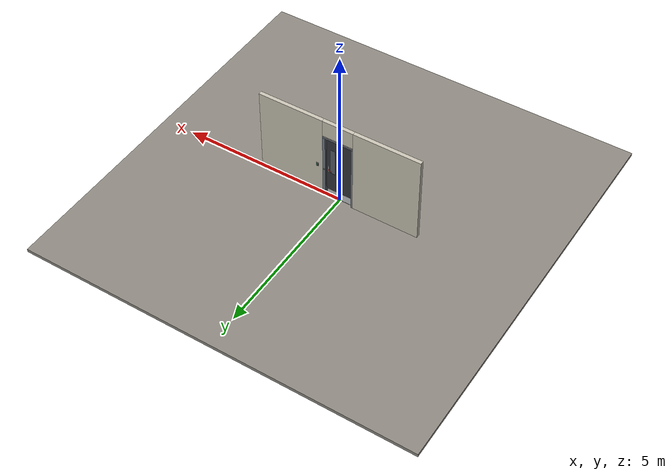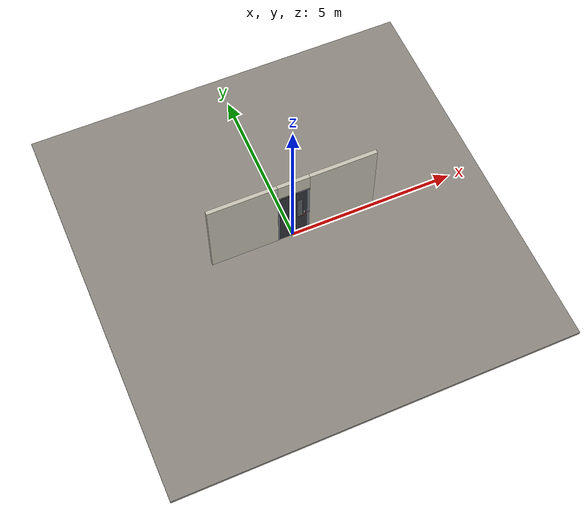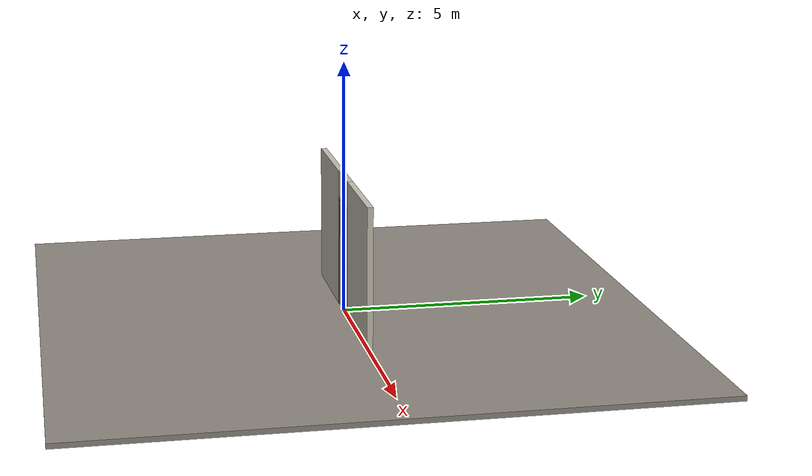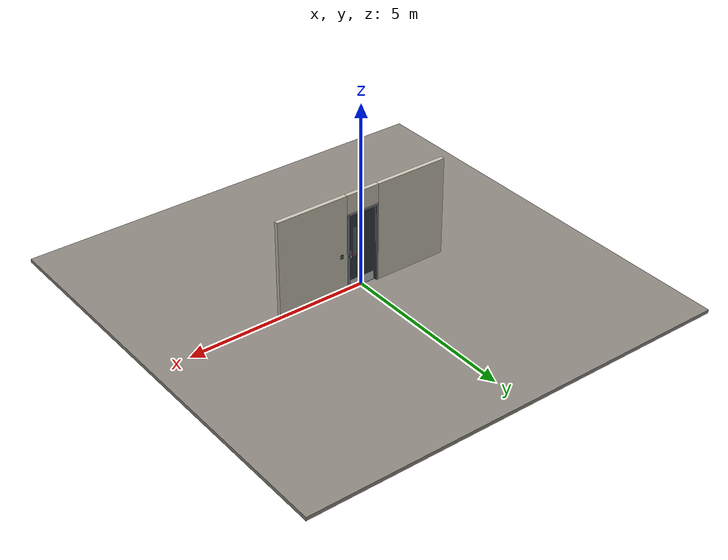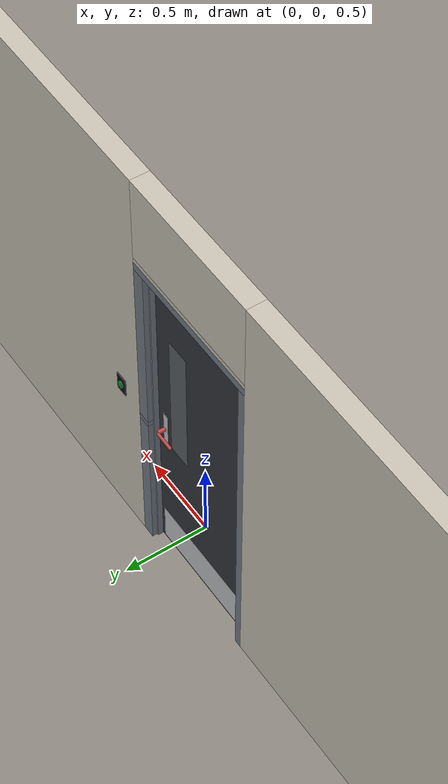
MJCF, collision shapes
<?xml version="1.0" ?>
<mujoco model="db0036_swing_single_full">
  <compiler angle="radian" meshdir="../../hardware" texturedir="../../textures" autolimits="true" inertiafromgeom="false"/>
  <option timestep="0.002" integrator="implicitfast" cone="elliptic" impratio="10" noslip_iterations="3">
    <flag multiccd="enable"/>
  </option>
  <size memory="16M"/>
  <default>
    <geom condim="4" solref="0.005 1" solimp="0.95 0.99 0.001"/>
    <joint solreflimit="0.005 1" solimplimit="0.95 0.99 0.001"/>
    <tendon solreflimit="0.005 1"/>
    <equality solref="0.002 1"/>
  </default>
  <visual>
    <headlight ambient="0.4 0.4 0.4" diffuse="0.7 0.7 0.7" specular="0.2 0.2 0.2"/>
    <quality shadowsize="4096"/>
    <map znear="0.01" zfar="60"/>
  </visual>
  <asset>
    <mesh name="hinge_e22b26c0c1" file="hinge_e22b26c0c1.obj"/>
    <mesh name="hinge_jamb_e1d088f8dc" file="hinge_jamb_e1d088f8dc.obj"/>
    <mesh name="lever_f913fc5b7b" file="lever_f913fc5b7b.obj"/>
    <material name="mat_floor" rgba="0.55 0.53 0.5 1" specular="0.2" shininess="0.15" reflectance="0"/>
    <material name="mat_wall" rgba="0.78 0.76 0.7 1" specular="0.2" shininess="0.1" reflectance="0"/>
    <material name="mat_leaf" rgba="0.2 0.21 0.23 1" specular="0.23" shininess="0.41" reflectance="0.02"/>
    <material name="mat_glass" rgba="0.85 0.92 0.95 0.25" specular="0.2" shininess="0.95" reflectance="0.1"/>
    <material name="mat_hinge" rgba="0.65 0.66 0.68 1" specular="0.74" shininess="0.5" reflectance="0.36"/>
    <material name="mat_op_stainless" rgba="0.75 0.76 0.77 1" specular="0.8" shininess="0.65" reflectance="0.4"/>
    <material name="mat_trim" rgba="0.85 0.66 0.3 1" specular="0.8" shininess="0.75" reflectance="0.4"/>
    <material name="mat_bolt" rgba="0.85 0.66 0.3 1" specular="0.8" shininess="0.75" reflectance="0.4"/>
    <material name="mat_frame" rgba="0.45 0.48 0.52 1" specular="0.32" shininess="0.6" reflectance="0.08"/>
    <material name="mat_closer" rgba="0.22 0.17 0.13 1" specular="0.8" shininess="0.6" reflectance="0.4"/>
    <material name="mat_kick" rgba="0.75 0.76 0.77 1" specular="0.8" shininess="0.65" reflectance="0.4"/>
    <material name="mat_wallreader" rgba="0.05 0.05 0.05 1" specular="0.38" shininess="0.3" reflectance="0.12"/>
    <material name="mat_rex" rgba="0.1 0.6 0.2 1" specular="0.2" shininess="0.6" reflectance="0"/>
    <texture name="skybox" type="skybox" builtin="gradient" rgb1="0.6 0.7 0.85" rgb2="0.9 0.92 0.95" width="256" height="256"/>
  </asset>
  <worldbody>
    <light name="sun" pos="1.5 -2.5 4" dir="-0.3 0.5 -0.8" directional="true" diffuse="0.8 0.8 0.8" specular="0.3 0.3 0.3" castshadow="true"/>
    <light name="fill" pos="-1.5 2.5 3" dir="0.3 -0.5 -0.7" directional="true" diffuse="0.35 0.35 0.4" castshadow="false"/>
    <camera name="robot_view" pos="0 -2.609312 1.812087" xyaxes="1 0 0 0 0.26963 0.962964" fovy="52"/>
    <camera name="far_view" pos="0 2.666313 1.812087" xyaxes="-1 0 0 0 -0.26963 0.962964" fovy="52"/>
    <camera name="iso" pos="2.004737 -2.187262 2.234138" xyaxes="0.741536 0.670913 0 -0.242917 0.268487 0.932151" fovy="46"/>
    <camera name="detail_handle" pos="0.4115 -0.877 1.296" xyaxes="0.97561 0.219512 0 -0.070934 0.315262 0.94635" fovy="38"/>
    <geom name="floor" type="box" size="6 6 0.05" pos="0 0 -0.05" material="mat_floor" group="0" contype="1" conaffinity="1" friction="0.8 0.005 0.0001" density="2400"/>
    <geom name="wall_left" type="box" size="1.01975 0.0575 1.3735" pos="-1.48025 0.0285 1.3735" material="mat_wall" group="0" contype="1" conaffinity="1" friction="0.6 0.005 0.0001" density="800"/>
    <geom name="wall_right" type="box" size="1.00475 0.0575 1.3735" pos="1.49525 0.0285 1.3735" material="mat_wall" group="0" contype="1" conaffinity="1" friction="0.6 0.005 0.0001" density="800"/>
    <geom name="wall_header" type="box" size="0.4755 0.0575 0.26" pos="0.015 0.0285 2.487" material="mat_wall" group="0" contype="1" conaffinity="1" friction="0.6 0.005 0.0001" density="800"/>
    <geom name="hinge_0_jamb" type="mesh" mesh="hinge_jamb_e1d088f8dc" pos="-0.4075 -0.029 0.259" material="mat_hinge" group="1" contype="0" conaffinity="0" density="7850"/>
    <geom name="hinge_1_jamb" type="mesh" mesh="hinge_jamb_e1d088f8dc" pos="-0.4075 -0.029 1.076" material="mat_hinge" group="1" contype="0" conaffinity="0" density="7850"/>
    <geom name="hinge_2_jamb" type="mesh" mesh="hinge_jamb_e1d088f8dc" pos="-0.4075 -0.029 1.963" material="mat_hinge" group="1" contype="0" conaffinity="0" density="7850"/>
    <geom name="jamb_hinge" type="box" size="0.025 0.0575 1.0735" pos="-0.4355 0.0285 1.0735" material="mat_frame" group="0" contype="1" conaffinity="1" friction="0.6 0.005 0.0001" density="300"/>
    <geom name="strike_1016_wall_n" type="box" size="0.04 0.039075 0.0167" pos="0.4505 0.046925 1.016" material="mat_frame" group="0" contype="1" conaffinity="1" friction="0.6 0.005 0.0001" density="300"/>
    <geom name="strike_1016_wall_p" type="box" size="0.04 0.008 0.0167" pos="0.4505 -0.01585 1.016" material="mat_frame" group="0" contype="1" conaffinity="1" friction="0.6 0.005 0.0001" density="300"/>
    <geom name="strike_1016_ramp" type="box" size="0.04 0.01649 0.0167" pos="0.453736 -0.022234 1.016" quat="0.977148 0 0 0.212558" material="mat_frame" group="0" contype="1" conaffinity="1" friction="0.12 0.005 0.0001" density="300"/>
    <geom name="strike_1016_back" type="box" size="0.03165 0.00785 0.0167" pos="0.45885 0 1.016" material="mat_frame" group="0" contype="1" conaffinity="1" friction="0.6 0.005 0.0001" density="300"/>
    <geom name="jamb_strike_0" type="box" size="0.04 0.0575 0.49965" pos="0.4505 0.0285 0.49965" material="mat_frame" group="0" contype="1" conaffinity="1" friction="0.6 0.005 0.0001" density="300"/>
    <geom name="jamb_strike_1" type="box" size="0.04 0.0575 0.55715" pos="0.4505 0.0285 1.58985" material="mat_frame" group="0" contype="1" conaffinity="1" friction="0.6 0.005 0.0001" density="300"/>
    <geom name="jamb_head" type="box" size="0.4755 0.0575 0.025" pos="0.015 0.0285 2.172" material="mat_frame" group="0" contype="1" conaffinity="1" friction="0.6 0.005 0.0001" density="300"/>
    <geom name="head_stud" type="box" size="0.4755 0.0575 0.015" pos="0.015 0.0285 2.212" material="mat_wall" group="0" contype="1" conaffinity="1" friction="0.6 0.005 0.0001" density="500"/>
    <geom name="stop_hinge" type="box" size="0.0055 0.016 1.0735" pos="-0.405 0.0385 1.0735" material="mat_frame" group="0" contype="1" conaffinity="1" friction="0.6 0.005 0.0001" density="300"/>
    <geom name="stop_strike" type="box" size="0.0055 0.016 1.0735" pos="0.405 0.0385 1.0735" material="mat_frame" group="0" contype="1" conaffinity="1" friction="0.6 0.005 0.0001" density="300"/>
    <geom name="stop_head" type="box" size="0.4105 0.016 0.0055" pos="0 0.0385 2.1415" material="mat_frame" group="0" contype="1" conaffinity="1" friction="0.6 0.005 0.0001" density="300"/>
    <geom name="closer_concealed_slot" type="box" size="0.25 0.008 0.004" pos="-0.1105 -0.032 2.152" material="mat_closer" group="1" contype="0" conaffinity="0" density="2700"/>
    <geom name="rex_plate" type="box" size="0.04 0.003 0.06" pos="0.6605 0.089 1.1" material="mat_wallreader" group="1" contype="0" conaffinity="0" density="1000"/>
    <site name="approach_point" pos="0 -1.5 0" quat="1 0 0 0" size="0.05" rgba="0.2 0.9 0.2 0.5" group="4"/>
    <site name="goal_point" pos="0 1.5 0" quat="1 0 0 0" size="0.05" rgba="0.2 0.9 0.2 0.5" group="4"/>
    <site name="door_plane_center" pos="0 0 1.0735" quat="1 0 0 0" size="0.02" rgba="0.2 0.9 0.2 0.5" group="4"/>
    <body name="rex_button" pos="0.6605 0.092 1.1">
      <inertial pos="0 0.004 0" mass="0.010053" quat="0 0 0.707107 -0.707107" diaginertia="0.000001059 0.000001059 0.000002011"/>
      <joint name="rex_button_slide" type="slide" axis="0 -1 0" limited="true" range="0 0.004" damping="1" stiffness="1500" springref="-0.004" armature="0.1"/>
      <geom name="rex_button_geom" type="cylinder" size="0.02 0.004" pos="0 0.004 0" quat="0.707107 -0.707107 0 0" material="mat_rex" group="0" contype="1" conaffinity="1" friction="0.6 0.005 0.0001" density="1000"/>
    </body>
    <body name="leaf" pos="-0.4105 0 0">
      <inertial pos="0.403957 0.000978 1.023686" mass="43.849845" quat="0.500235 0.500524 0.500898 -0.498339" diaginertia="2.496766202 17.762077246 20.242596344"/>
      <joint name="leaf_hinge" type="hinge" axis="0 0 -1" pos="0.003 -0.029 0" limited="true" range="0 2.094395" damping="10.168374" frictionloss="0.180802" stiffness="11.109015" springref="-2.025382" armature="0.02"/>
      <geom name="leaf_slab" type="box" size="0.4065 0.022 1.067" pos="0.4095 0 1.076" material="mat_leaf" group="0" contype="1" conaffinity="1" friction="0.4 0.005 0.0001" density="1"/>
      <geom name="leaf_glass_0" type="box" size="0.075 0.0228 0.4268" pos="0.621 0 1.33208" material="mat_glass" group="1" contype="0" conaffinity="0" density="1"/>
      <geom name="hinge_0" type="mesh" mesh="hinge_e22b26c0c1" pos="0.003 -0.029 0.259" material="mat_hinge" group="1" contype="0" conaffinity="0" density="7850"/>
      <geom name="hinge_1" type="mesh" mesh="hinge_e22b26c0c1" pos="0.003 -0.029 1.076" material="mat_hinge" group="1" contype="0" conaffinity="0" density="7850"/>
      <geom name="hinge_2" type="mesh" mesh="hinge_e22b26c0c1" pos="0.003 -0.029 1.963" material="mat_hinge" group="1" contype="0" conaffinity="0" density="7850"/>
      <geom name="leaf_handle_escutcheon_n" type="box" size="0.02 0.0015 0.11" pos="0.746 -0.0235 1.016" material="mat_op_stainless" group="1" contype="0" conaffinity="0" density="3000"/>
      <geom name="leaf_handle_escutcheon_p" type="box" size="0.02 0.0015 0.11" pos="0.746 0.0235 1.016" material="mat_op_stainless" group="1" contype="0" conaffinity="0" density="3000"/>
      <geom name="leaf_latch_bolt_faceplate" type="box" size="0.0006 0.01235 0.0267" pos="0.8154 0 1.016" material="mat_bolt" group="1" contype="0" conaffinity="0" density="8500"/>
      <geom name="kick_plate_p" type="box" size="0.3765 0.0008 0.125" pos="0.4095 0.0228 0.144" material="mat_kick" group="2" contype="0" conaffinity="0" density="7900"/>
      <site name="leaf_edge_mid" pos="0.816 0 1.067" quat="1 0 0 0" size="0.02" rgba="0.2 0.9 0.2 0.5" group="4"/>
      <body name="leaf_handle" pos="0.746 0 1.016">
        <inertial pos="-0.038995 0 0" mass="0.772658" quat="0.707107 0 0 -0.707107" diaginertia="0.001545312 0.003473151 0.004979007"/>
        <joint name="leaf_handle_hinge" type="hinge" axis="0 -1 0" limited="true" range="0 0.65" damping="0.225568" frictionloss="0.051863" stiffness="1" springref="-0.503022" armature="0.01"/>
        <geom name="leaf_handle_spindle" type="cylinder" size="0.006 0.034" pos="0 0 0" quat="0.707107 -0.707107 0 0" material="mat_op_stainless" group="1" contype="0" conaffinity="0" density="7850"/>
        <geom name="leaf_handle_lever_n" type="mesh" mesh="lever_f913fc5b7b" pos="0 -0.022 0" quat="0.707107 0.707107 0 0" material="mat_op_stainless" group="1" contype="0" conaffinity="0" density="3000"/>
        <geom name="leaf_handle_lever_col_n" type="capsule" size="0.0095 0.0555" pos="-0.065 -0.077 0" quat="0.707107 0 -0.707107 0" material="mat_op_stainless" group="3" contype="1" conaffinity="1" rgba="0.8 0.3 0.3 0.25" friction="0.7 0.01 0.0001" density="3000"/>
        <geom name="leaf_handle_hub_col_n" type="cylinder" size="0.012 0.022" pos="0 -0.052 0" quat="0.707107 -0.707107 0 0" material="mat_op_stainless" group="3" contype="1" conaffinity="1" rgba="0.8 0.3 0.3 0.25" friction="0.6 0.005 0.0001" density="3000"/>
        <geom name="leaf_handle_lever_p" type="mesh" mesh="lever_f913fc5b7b" pos="0 0.022 0" quat="-0.707107 0.707107 0 0" material="mat_op_stainless" group="1" contype="0" conaffinity="0" density="3000"/>
        <geom name="leaf_handle_lever_col_p" type="capsule" size="0.0095 0.0555" pos="-0.065 0.077 0" quat="0.707107 0 -0.707107 0" material="mat_op_stainless" group="3" contype="1" conaffinity="1" rgba="0.8 0.3 0.3 0.25" friction="0.7 0.01 0.0001" density="3000"/>
        <geom name="leaf_handle_hub_col_p" type="cylinder" size="0.012 0.022" pos="0 0.052 0" quat="0.707107 -0.707107 0 0" material="mat_op_stainless" group="3" contype="1" conaffinity="1" rgba="0.8 0.3 0.3 0.25" friction="0.6 0.005 0.0001" density="3000"/>
        <site name="leaf_handle_grip_n" pos="-0.104 -0.077 0" quat="1 0 0 0" size="0.012" rgba="0.2 0.9 0.2 0.5" group="4"/>
        <site name="leaf_handle_grip_p" pos="-0.104 0.077 0" quat="1 0 0 0" size="0.012" rgba="0.2 0.9 0.2 0.5" group="4"/>
      </body>
      <body name="leaf_latch_bolt" pos="0.816 0 1.016">
        <inertial pos="-0.00865 0 0" mass="0.041419" quat="0.92388 -0.382683 0 0" diaginertia="0.000000798 0.000005598 0.000005598"/>
        <joint name="leaf_latch_bolt_slide" type="slide" axis="-1 0 0" limited="true" range="0 0.0127" damping="2" frictionloss="0.3" stiffness="300" springref="-0.008333" armature="0.1"/>
        <geom name="leaf_latch_bolt_capsule" type="capsule" size="0.00635 0.015" pos="-0.00865 0 0" quat="0.707107 0 0.707107 0" material="mat_bolt" group="0" contype="1" conaffinity="1" friction="0.2 0.005 0.0001" density="8500"/>
      </body>
    </body>
  </worldbody>
  <tendon>
    <fixed name="leaf_latch_bolt_coupling" limited="true" range="0 10">
      <joint joint="leaf_latch_bolt_slide" coef="1"/>
      <joint joint="leaf_handle_hinge" coef="-0.02082"/>
    </fixed>
  </tendon>
  <sensor>
    <jointpos name="leaf_hinge_pos" joint="leaf_hinge"/>
    <jointvel name="leaf_hinge_vel" joint="leaf_hinge"/>
    <jointpos name="leaf_handle_hinge_pos" joint="leaf_handle_hinge"/>
    <jointvel name="leaf_handle_hinge_vel" joint="leaf_handle_hinge"/>
    <jointpos name="leaf_latch_bolt_slide_pos" joint="leaf_latch_bolt_slide"/>
    <jointvel name="leaf_latch_bolt_slide_vel" joint="leaf_latch_bolt_slide"/>
    <jointpos name="rex_button_slide_pos" joint="rex_button_slide"/>
    <jointvel name="rex_button_slide_vel" joint="rex_button_slide"/>
  </sensor>
</mujoco>
